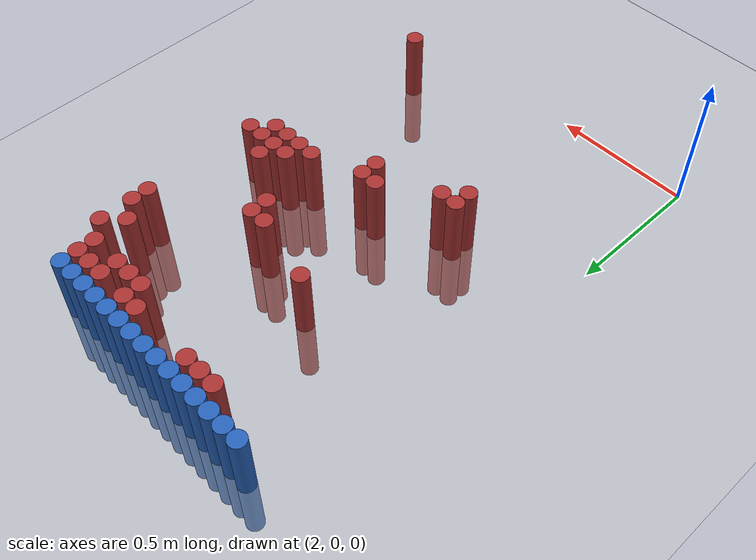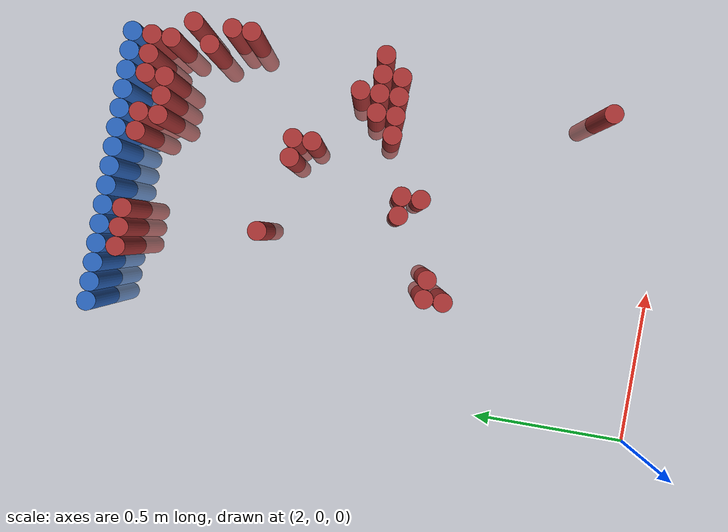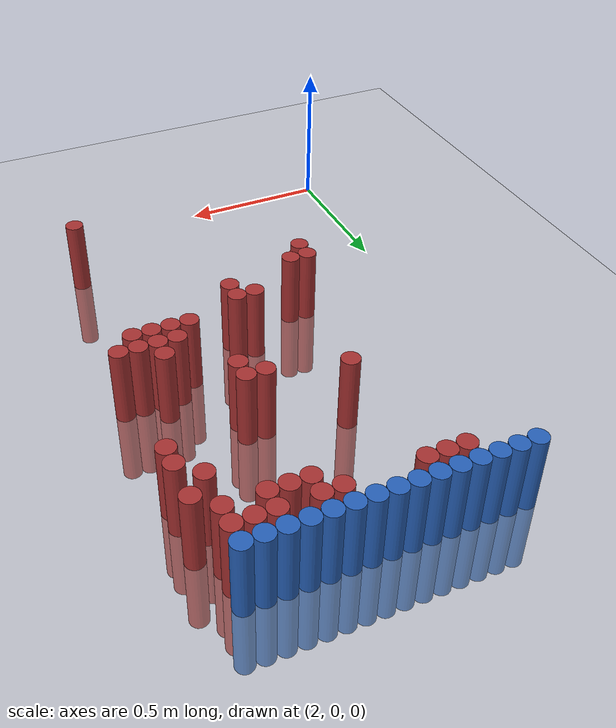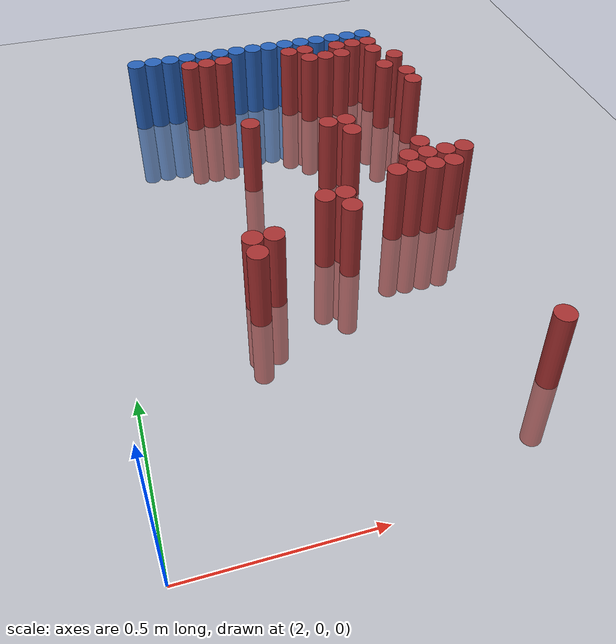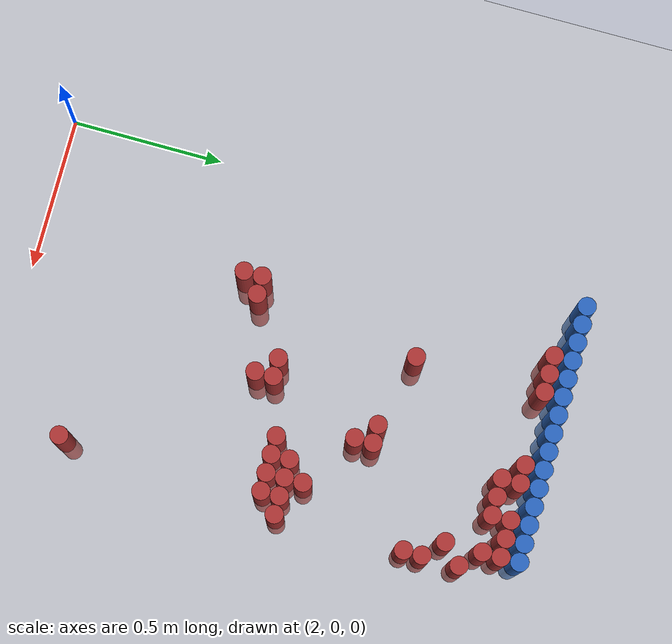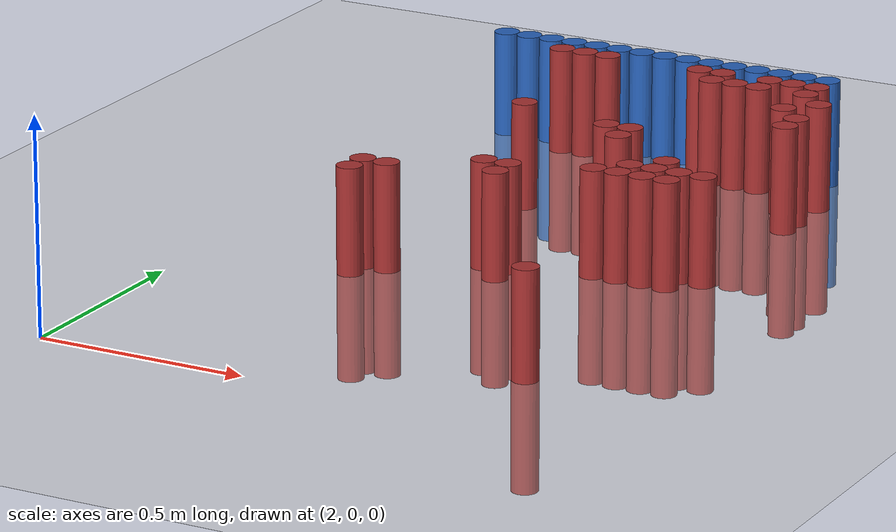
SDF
<sdf version="1.6">
 <world name="default">
  <model name="ground_plane">
   <static>1</static>
   <link name="link">
    <collision name="collision">
     <geometry><plane><normal>0 0 1</normal><size>100 100</size></plane></geometry>
     <surface><friction><ode><mu>100</mu><mu2>50</mu2></ode></friction></surface>
    </collision>
    <visual name="visual">
     <cast_shadows>0</cast_shadows>
     <geometry><plane><normal>0 0 1</normal><size>100 100</size></plane></geometry>
     <material>
      <script><uri>file://media/materials/scripts/gazebo.material</uri><name>Gazebo/Grey</name></script>
     </material>
    </visual>
   </link>
  </model>
  <model name="unit_cylinder_97">
   <static>1</static>
   <pose>2.190000 1.770000 0.000000 0.000000 0.000000 0.000000</pose>
   <link name="link">
    <inertial>
     <mass>1</mass>
     <inertia><ixx>0.145833</ixx><ixy>0</ixy><ixz>0</ixz><iyy>0.145833</iyy><iyz>0</iyz><izz>0.125</izz></inertia>
    </inertial>
    <collision name="collision">
     <geometry><cylinder><radius>0.030000</radius><length>0.5</length></cylinder></geometry>
    </collision>
    <visual name="visual">
     <geometry><cylinder><radius>0.030000</radius><length>0.5</length></cylinder></geometry>
     <material>
      <ambient>0.152000 0.379000 0.720000 1</ambient>
      <diffuse>0.152000 0.379000 0.720000 1</diffuse>
     </material>
     <material>
      <script><name>Gazebo/Grey</name><uri>file://media/materials/scripts/gazebo.material</uri></script>
     </material>
    </visual>
   </link>
  </model>
  <model name="unit_cylinder_98">
   <static>1</static>
   <pose>2.250000 1.770000 0.000000 0.000000 0.000000 0.000000</pose>
   <link name="link">
    <inertial>
     <mass>1</mass>
     <inertia><ixx>0.145833</ixx><ixy>0</ixy><ixz>0</ixz><iyy>0.145833</iyy><iyz>0</iyz><izz>0.125</izz></inertia>
    </inertial>
    <collision name="collision">
     <geometry><cylinder><radius>0.030000</radius><length>0.5</length></cylinder></geometry>
    </collision>
    <visual name="visual">
     <geometry><cylinder><radius>0.030000</radius><length>0.5</length></cylinder></geometry>
     <material>
      <ambient>0.152000 0.379000 0.720000 1</ambient>
      <diffuse>0.152000 0.379000 0.720000 1</diffuse>
     </material>
     <material>
      <script><name>Gazebo/Grey</name><uri>file://media/materials/scripts/gazebo.material</uri></script>
     </material>
    </visual>
   </link>
  </model>
  <model name="unit_cylinder_99">
   <static>1</static>
   <pose>2.310000 1.770000 0.000000 0.000000 0.000000 0.000000</pose>
   <link name="link">
    <inertial>
     <mass>1</mass>
     <inertia><ixx>0.145833</ixx><ixy>0</ixy><ixz>0</ixz><iyy>0.145833</iyy><iyz>0</iyz><izz>0.125</izz></inertia>
    </inertial>
    <collision name="collision">
     <geometry><cylinder><radius>0.030000</radius><length>0.5</length></cylinder></geometry>
    </collision>
    <visual name="visual">
     <geometry><cylinder><radius>0.030000</radius><length>0.5</length></cylinder></geometry>
     <material>
      <ambient>0.152000 0.379000 0.720000 1</ambient>
      <diffuse>0.152000 0.379000 0.720000 1</diffuse>
     </material>
     <material>
      <script><name>Gazebo/Grey</name><uri>file://media/materials/scripts/gazebo.material</uri></script>
     </material>
    </visual>
   </link>
  </model>
  <model name="unit_cylinder_100">
   <static>1</static>
   <pose>2.370000 1.770000 0.000000 0.000000 0.000000 0.000000</pose>
   <link name="link">
    <inertial>
     <mass>1</mass>
     <inertia><ixx>0.145833</ixx><ixy>0</ixy><ixz>0</ixz><iyy>0.145833</iyy><iyz>0</iyz><izz>0.125</izz></inertia>
    </inertial>
    <collision name="collision">
     <geometry><cylinder><radius>0.030000</radius><length>0.5</length></cylinder></geometry>
    </collision>
    <visual name="visual">
     <geometry><cylinder><radius>0.030000</radius><length>0.5</length></cylinder></geometry>
     <material>
      <ambient>0.152000 0.379000 0.720000 1</ambient>
      <diffuse>0.152000 0.379000 0.720000 1</diffuse>
     </material>
     <material>
      <script><name>Gazebo/Grey</name><uri>file://media/materials/scripts/gazebo.material</uri></script>
     </material>
    </visual>
   </link>
  </model>
  <model name="unit_cylinder_101">
   <static>1</static>
   <pose>2.430000 1.770000 0.000000 0.000000 0.000000 0.000000</pose>
   <link name="link">
    <inertial>
     <mass>1</mass>
     <inertia><ixx>0.145833</ixx><ixy>0</ixy><ixz>0</ixz><iyy>0.145833</iyy><iyz>0</iyz><izz>0.125</izz></inertia>
    </inertial>
    <collision name="collision">
     <geometry><cylinder><radius>0.030000</radius><length>0.5</length></cylinder></geometry>
    </collision>
    <visual name="visual">
     <geometry><cylinder><radius>0.030000</radius><length>0.5</length></cylinder></geometry>
     <material>
      <ambient>0.152000 0.379000 0.720000 1</ambient>
      <diffuse>0.152000 0.379000 0.720000 1</diffuse>
     </material>
     <material>
      <script><name>Gazebo/Grey</name><uri>file://media/materials/scripts/gazebo.material</uri></script>
     </material>
    </visual>
   </link>
  </model>
  <model name="unit_cylinder_102">
   <static>1</static>
   <pose>2.490000 1.770000 0.000000 0.000000 0.000000 0.000000</pose>
   <link name="link">
    <inertial>
     <mass>1</mass>
     <inertia><ixx>0.145833</ixx><ixy>0</ixy><ixz>0</ixz><iyy>0.145833</iyy><iyz>0</iyz><izz>0.125</izz></inertia>
    </inertial>
    <collision name="collision">
     <geometry><cylinder><radius>0.030000</radius><length>0.5</length></cylinder></geometry>
    </collision>
    <visual name="visual">
     <geometry><cylinder><radius>0.030000</radius><length>0.5</length></cylinder></geometry>
     <material>
      <ambient>0.152000 0.379000 0.720000 1</ambient>
      <diffuse>0.152000 0.379000 0.720000 1</diffuse>
     </material>
     <material>
      <script><name>Gazebo/Grey</name><uri>file://media/materials/scripts/gazebo.material</uri></script>
     </material>
    </visual>
   </link>
  </model>
  <model name="unit_cylinder_103">
   <static>1</static>
   <pose>2.550000 1.770000 0.000000 0.000000 0.000000 0.000000</pose>
   <link name="link">
    <inertial>
     <mass>1</mass>
     <inertia><ixx>0.145833</ixx><ixy>0</ixy><ixz>0</ixz><iyy>0.145833</iyy><iyz>0</iyz><izz>0.125</izz></inertia>
    </inertial>
    <collision name="collision">
     <geometry><cylinder><radius>0.030000</radius><length>0.5</length></cylinder></geometry>
    </collision>
    <visual name="visual">
     <geometry><cylinder><radius>0.030000</radius><length>0.5</length></cylinder></geometry>
     <material>
      <ambient>0.152000 0.379000 0.720000 1</ambient>
      <diffuse>0.152000 0.379000 0.720000 1</diffuse>
     </material>
     <material>
      <script><name>Gazebo/Grey</name><uri>file://media/materials/scripts/gazebo.material</uri></script>
     </material>
    </visual>
   </link>
  </model>
  <model name="unit_cylinder_104">
   <static>1</static>
   <pose>2.610000 1.770000 0.000000 0.000000 0.000000 0.000000</pose>
   <link name="link">
    <inertial>
     <mass>1</mass>
     <inertia><ixx>0.145833</ixx><ixy>0</ixy><ixz>0</ixz><iyy>0.145833</iyy><iyz>0</iyz><izz>0.125</izz></inertia>
    </inertial>
    <collision name="collision">
     <geometry><cylinder><radius>0.030000</radius><length>0.5</length></cylinder></geometry>
    </collision>
    <visual name="visual">
     <geometry><cylinder><radius>0.030000</radius><length>0.5</length></cylinder></geometry>
     <material>
      <ambient>0.152000 0.379000 0.720000 1</ambient>
      <diffuse>0.152000 0.379000 0.720000 1</diffuse>
     </material>
     <material>
      <script><name>Gazebo/Grey</name><uri>file://media/materials/scripts/gazebo.material</uri></script>
     </material>
    </visual>
   </link>
  </model>
  <model name="unit_cylinder_105">
   <static>1</static>
   <pose>2.670000 1.770000 0.000000 0.000000 0.000000 0.000000</pose>
   <link name="link">
    <inertial>
     <mass>1</mass>
     <inertia><ixx>0.145833</ixx><ixy>0</ixy><ixz>0</ixz><iyy>0.145833</iyy><iyz>0</iyz><izz>0.125</izz></inertia>
    </inertial>
    <collision name="collision">
     <geometry><cylinder><radius>0.030000</radius><length>0.5</length></cylinder></geometry>
    </collision>
    <visual name="visual">
     <geometry><cylinder><radius>0.030000</radius><length>0.5</length></cylinder></geometry>
     <material>
      <ambient>0.152000 0.379000 0.720000 1</ambient>
      <diffuse>0.152000 0.379000 0.720000 1</diffuse>
     </material>
     <material>
      <script><name>Gazebo/Grey</name><uri>file://media/materials/scripts/gazebo.material</uri></script>
     </material>
    </visual>
   </link>
  </model>
  <model name="unit_cylinder_106">
   <static>1</static>
   <pose>2.730000 1.770000 0.000000 0.000000 0.000000 0.000000</pose>
   <link name="link">
    <inertial>
     <mass>1</mass>
     <inertia><ixx>0.145833</ixx><ixy>0</ixy><ixz>0</ixz><iyy>0.145833</iyy><iyz>0</iyz><izz>0.125</izz></inertia>
    </inertial>
    <collision name="collision">
     <geometry><cylinder><radius>0.030000</radius><length>0.5</length></cylinder></geometry>
    </collision>
    <visual name="visual">
     <geometry><cylinder><radius>0.030000</radius><length>0.5</length></cylinder></geometry>
     <material>
      <ambient>0.152000 0.379000 0.720000 1</ambient>
      <diffuse>0.152000 0.379000 0.720000 1</diffuse>
     </material>
     <material>
      <script><name>Gazebo/Grey</name><uri>file://media/materials/scripts/gazebo.material</uri></script>
     </material>
    </visual>
   </link>
  </model>
  <model name="unit_cylinder_107">
   <static>1</static>
   <pose>2.790000 1.770000 0.000000 0.000000 0.000000 0.000000</pose>
   <link name="link">
    <inertial>
     <mass>1</mass>
     <inertia><ixx>0.145833</ixx><ixy>0</ixy><ixz>0</ixz><iyy>0.145833</iyy><iyz>0</iyz><izz>0.125</izz></inertia>
    </inertial>
    <collision name="collision">
     <geometry><cylinder><radius>0.030000</radius><length>0.5</length></cylinder></geometry>
    </collision>
    <visual name="visual">
     <geometry><cylinder><radius>0.030000</radius><length>0.5</length></cylinder></geometry>
     <material>
      <ambient>0.152000 0.379000 0.720000 1</ambient>
      <diffuse>0.152000 0.379000 0.720000 1</diffuse>
     </material>
     <material>
      <script><name>Gazebo/Grey</name><uri>file://media/materials/scripts/gazebo.material</uri></script>
     </material>
    </visual>
   </link>
  </model>
  <model name="unit_cylinder_108">
   <static>1</static>
   <pose>2.850000 1.770000 0.000000 0.000000 0.000000 0.000000</pose>
   <link name="link">
    <inertial>
     <mass>1</mass>
     <inertia><ixx>0.145833</ixx><ixy>0</ixy><ixz>0</ixz><iyy>0.145833</iyy><iyz>0</iyz><izz>0.125</izz></inertia>
    </inertial>
    <collision name="collision">
     <geometry><cylinder><radius>0.030000</radius><length>0.5</length></cylinder></geometry>
    </collision>
    <visual name="visual">
     <geometry><cylinder><radius>0.030000</radius><length>0.5</length></cylinder></geometry>
     <material>
      <ambient>0.152000 0.379000 0.720000 1</ambient>
      <diffuse>0.152000 0.379000 0.720000 1</diffuse>
     </material>
     <material>
      <script><name>Gazebo/Grey</name><uri>file://media/materials/scripts/gazebo.material</uri></script>
     </material>
    </visual>
   </link>
  </model>
  <model name="unit_cylinder_109">
   <static>1</static>
   <pose>2.910000 1.770000 0.000000 0.000000 0.000000 0.000000</pose>
   <link name="link">
    <inertial>
     <mass>1</mass>
     <inertia><ixx>0.145833</ixx><ixy>0</ixy><ixz>0</ixz><iyy>0.145833</iyy><iyz>0</iyz><izz>0.125</izz></inertia>
    </inertial>
    <collision name="collision">
     <geometry><cylinder><radius>0.030000</radius><length>0.5</length></cylinder></geometry>
    </collision>
    <visual name="visual">
     <geometry><cylinder><radius>0.030000</radius><length>0.5</length></cylinder></geometry>
     <material>
      <ambient>0.152000 0.379000 0.720000 1</ambient>
      <diffuse>0.152000 0.379000 0.720000 1</diffuse>
     </material>
     <material>
      <script><name>Gazebo/Grey</name><uri>file://media/materials/scripts/gazebo.material</uri></script>
     </material>
    </visual>
   </link>
  </model>
  <model name="unit_cylinder_110">
   <static>1</static>
   <pose>2.970000 1.770000 0.000000 0.000000 0.000000 0.000000</pose>
   <link name="link">
    <inertial>
     <mass>1</mass>
     <inertia><ixx>0.145833</ixx><ixy>0</ixy><ixz>0</ixz><iyy>0.145833</iyy><iyz>0</iyz><izz>0.125</izz></inertia>
    </inertial>
    <collision name="collision">
     <geometry><cylinder><radius>0.030000</radius><length>0.5</length></cylinder></geometry>
    </collision>
    <visual name="visual">
     <geometry><cylinder><radius>0.030000</radius><length>0.5</length></cylinder></geometry>
     <material>
      <ambient>0.152000 0.379000 0.720000 1</ambient>
      <diffuse>0.152000 0.379000 0.720000 1</diffuse>
     </material>
     <material>
      <script><name>Gazebo/Grey</name><uri>file://media/materials/scripts/gazebo.material</uri></script>
     </material>
    </visual>
   </link>
  </model>
  <model name="unit_cylinder_111">
   <static>1</static>
   <pose>3.030000 1.770000 0.000000 0.000000 0.000000 0.000000</pose>
   <link name="link">
    <inertial>
     <mass>1</mass>
     <inertia><ixx>0.145833</ixx><ixy>0</ixy><ixz>0</ixz><iyy>0.145833</iyy><iyz>0</iyz><izz>0.125</izz></inertia>
    </inertial>
    <collision name="collision">
     <geometry><cylinder><radius>0.030000</radius><length>0.5</length></cylinder></geometry>
    </collision>
    <visual name="visual">
     <geometry><cylinder><radius>0.030000</radius><length>0.5</length></cylinder></geometry>
     <material>
      <ambient>0.152000 0.379000 0.720000 1</ambient>
      <diffuse>0.152000 0.379000 0.720000 1</diffuse>
     </material>
     <material>
      <script><name>Gazebo/Grey</name><uri>file://media/materials/scripts/gazebo.material</uri></script>
     </material>
    </visual>
   </link>
  </model>
  <model name="unit_cylinder_125">
   <static>1</static>
   <pose>2.370000 1.710000 0.000000 0.000000 0.000000 0.000000</pose>
   <link name="link">
    <inertial>
     <mass>1</mass>
     <inertia><ixx>0.145833</ixx><ixy>0</ixy><ixz>0</ixz><iyy>0.145833</iyy><iyz>0</iyz><izz>0.125</izz></inertia>
    </inertial>
    <collision name="collision">
     <geometry><cylinder><radius>0.030000</radius><length>0.5</length></cylinder></geometry>
    </collision>
    <visual name="visual">
     <geometry><cylinder><radius>0.030000</radius><length>0.5</length></cylinder></geometry>
     <material>
      <ambient>0.648000 0.192000 0.192000 1</ambient>
      <diffuse>0.648000 0.192000 0.192000 1</diffuse>
     </material>
     <material>
      <script><name>Gazebo/Grey</name><uri>file://media/materials/scripts/gazebo.material</uri></script>
     </material>
    </visual>
   </link>
  </model>
  <model name="unit_cylinder_126">
   <static>1</static>
   <pose>2.430000 1.710000 0.000000 0.000000 0.000000 0.000000</pose>
   <link name="link">
    <inertial>
     <mass>1</mass>
     <inertia><ixx>0.145833</ixx><ixy>0</ixy><ixz>0</ixz><iyy>0.145833</iyy><iyz>0</iyz><izz>0.125</izz></inertia>
    </inertial>
    <collision name="collision">
     <geometry><cylinder><radius>0.030000</radius><length>0.5</length></cylinder></geometry>
    </collision>
    <visual name="visual">
     <geometry><cylinder><radius>0.030000</radius><length>0.5</length></cylinder></geometry>
     <material>
      <ambient>0.648000 0.192000 0.192000 1</ambient>
      <diffuse>0.648000 0.192000 0.192000 1</diffuse>
     </material>
     <material>
      <script><name>Gazebo/Grey</name><uri>file://media/materials/scripts/gazebo.material</uri></script>
     </material>
    </visual>
   </link>
  </model>
  <model name="unit_cylinder_127">
   <static>1</static>
   <pose>2.490000 1.710000 0.000000 0.000000 0.000000 0.000000</pose>
   <link name="link">
    <inertial>
     <mass>1</mass>
     <inertia><ixx>0.145833</ixx><ixy>0</ixy><ixz>0</ixz><iyy>0.145833</iyy><iyz>0</iyz><izz>0.125</izz></inertia>
    </inertial>
    <collision name="collision">
     <geometry><cylinder><radius>0.030000</radius><length>0.5</length></cylinder></geometry>
    </collision>
    <visual name="visual">
     <geometry><cylinder><radius>0.030000</radius><length>0.5</length></cylinder></geometry>
     <material>
      <ambient>0.648000 0.192000 0.192000 1</ambient>
      <diffuse>0.648000 0.192000 0.192000 1</diffuse>
     </material>
     <material>
      <script><name>Gazebo/Grey</name><uri>file://media/materials/scripts/gazebo.material</uri></script>
     </material>
    </visual>
   </link>
  </model>
  <model name="unit_cylinder_128">
   <static>1</static>
   <pose>2.730000 1.710000 0.000000 0.000000 0.000000 0.000000</pose>
   <link name="link">
    <inertial>
     <mass>1</mass>
     <inertia><ixx>0.145833</ixx><ixy>0</ixy><ixz>0</ixz><iyy>0.145833</iyy><iyz>0</iyz><izz>0.125</izz></inertia>
    </inertial>
    <collision name="collision">
     <geometry><cylinder><radius>0.030000</radius><length>0.5</length></cylinder></geometry>
    </collision>
    <visual name="visual">
     <geometry><cylinder><radius>0.030000</radius><length>0.5</length></cylinder></geometry>
     <material>
      <ambient>0.648000 0.192000 0.192000 1</ambient>
      <diffuse>0.648000 0.192000 0.192000 1</diffuse>
     </material>
     <material>
      <script><name>Gazebo/Grey</name><uri>file://media/materials/scripts/gazebo.material</uri></script>
     </material>
    </visual>
   </link>
  </model>
  <model name="unit_cylinder_129">
   <static>1</static>
   <pose>2.790000 1.710000 0.000000 0.000000 0.000000 0.000000</pose>
   <link name="link">
    <inertial>
     <mass>1</mass>
     <inertia><ixx>0.145833</ixx><ixy>0</ixy><ixz>0</ixz><iyy>0.145833</iyy><iyz>0</iyz><izz>0.125</izz></inertia>
    </inertial>
    <collision name="collision">
     <geometry><cylinder><radius>0.030000</radius><length>0.5</length></cylinder></geometry>
    </collision>
    <visual name="visual">
     <geometry><cylinder><radius>0.030000</radius><length>0.5</length></cylinder></geometry>
     <material>
      <ambient>0.648000 0.192000 0.192000 1</ambient>
      <diffuse>0.648000 0.192000 0.192000 1</diffuse>
     </material>
     <material>
      <script><name>Gazebo/Grey</name><uri>file://media/materials/scripts/gazebo.material</uri></script>
     </material>
    </visual>
   </link>
  </model>
  <model name="unit_cylinder_130">
   <static>1</static>
   <pose>2.910000 1.710000 0.000000 0.000000 0.000000 0.000000</pose>
   <link name="link">
    <inertial>
     <mass>1</mass>
     <inertia><ixx>0.145833</ixx><ixy>0</ixy><ixz>0</ixz><iyy>0.145833</iyy><iyz>0</iyz><izz>0.125</izz></inertia>
    </inertial>
    <collision name="collision">
     <geometry><cylinder><radius>0.030000</radius><length>0.5</length></cylinder></geometry>
    </collision>
    <visual name="visual">
     <geometry><cylinder><radius>0.030000</radius><length>0.5</length></cylinder></geometry>
     <material>
      <ambient>0.648000 0.192000 0.192000 1</ambient>
      <diffuse>0.648000 0.192000 0.192000 1</diffuse>
     </material>
     <material>
      <script><name>Gazebo/Grey</name><uri>file://media/materials/scripts/gazebo.material</uri></script>
     </material>
    </visual>
   </link>
  </model>
  <model name="unit_cylinder_131">
   <static>1</static>
   <pose>2.970000 1.710000 0.000000 0.000000 0.000000 0.000000</pose>
   <link name="link">
    <inertial>
     <mass>1</mass>
     <inertia><ixx>0.145833</ixx><ixy>0</ixy><ixz>0</ixz><iyy>0.145833</iyy><iyz>0</iyz><izz>0.125</izz></inertia>
    </inertial>
    <collision name="collision">
     <geometry><cylinder><radius>0.030000</radius><length>0.5</length></cylinder></geometry>
    </collision>
    <visual name="visual">
     <geometry><cylinder><radius>0.030000</radius><length>0.5</length></cylinder></geometry>
     <material>
      <ambient>0.648000 0.192000 0.192000 1</ambient>
      <diffuse>0.648000 0.192000 0.192000 1</diffuse>
     </material>
     <material>
      <script><name>Gazebo/Grey</name><uri>file://media/materials/scripts/gazebo.material</uri></script>
     </material>
    </visual>
   </link>
  </model>
  <model name="unit_cylinder_132">
   <static>1</static>
   <pose>3.030000 1.710000 0.000000 0.000000 0.000000 0.000000</pose>
   <link name="link">
    <inertial>
     <mass>1</mass>
     <inertia><ixx>0.145833</ixx><ixy>0</ixy><ixz>0</ixz><iyy>0.145833</iyy><iyz>0</iyz><izz>0.125</izz></inertia>
    </inertial>
    <collision name="collision">
     <geometry><cylinder><radius>0.030000</radius><length>0.5</length></cylinder></geometry>
    </collision>
    <visual name="visual">
     <geometry><cylinder><radius>0.030000</radius><length>0.5</length></cylinder></geometry>
     <material>
      <ambient>0.648000 0.192000 0.192000 1</ambient>
      <diffuse>0.648000 0.192000 0.192000 1</diffuse>
     </material>
     <material>
      <script><name>Gazebo/Grey</name><uri>file://media/materials/scripts/gazebo.material</uri></script>
     </material>
    </visual>
   </link>
  </model>
  <model name="unit_cylinder_142">
   <static>1</static>
   <pose>2.790000 1.650000 0.000000 0.000000 0.000000 0.000000</pose>
   <link name="link">
    <inertial>
     <mass>1</mass>
     <inertia><ixx>0.145833</ixx><ixy>0</ixy><ixz>0</ixz><iyy>0.145833</iyy><iyz>0</iyz><izz>0.125</izz></inertia>
    </inertial>
    <collision name="collision">
     <geometry><cylinder><radius>0.030000</radius><length>0.5</length></cylinder></geometry>
    </collision>
    <visual name="visual">
     <geometry><cylinder><radius>0.030000</radius><length>0.5</length></cylinder></geometry>
     <material>
      <ambient>0.648000 0.192000 0.192000 1</ambient>
      <diffuse>0.648000 0.192000 0.192000 1</diffuse>
     </material>
     <material>
      <script><name>Gazebo/Grey</name><uri>file://media/materials/scripts/gazebo.material</uri></script>
     </material>
    </visual>
   </link>
  </model>
  <model name="unit_cylinder_143">
   <static>1</static>
   <pose>2.850000 1.650000 0.000000 0.000000 0.000000 0.000000</pose>
   <link name="link">
    <inertial>
     <mass>1</mass>
     <inertia><ixx>0.145833</ixx><ixy>0</ixy><ixz>0</ixz><iyy>0.145833</iyy><iyz>0</iyz><izz>0.125</izz></inertia>
    </inertial>
    <collision name="collision">
     <geometry><cylinder><radius>0.030000</radius><length>0.5</length></cylinder></geometry>
    </collision>
    <visual name="visual">
     <geometry><cylinder><radius>0.030000</radius><length>0.5</length></cylinder></geometry>
     <material>
      <ambient>0.648000 0.192000 0.192000 1</ambient>
      <diffuse>0.648000 0.192000 0.192000 1</diffuse>
     </material>
     <material>
      <script><name>Gazebo/Grey</name><uri>file://media/materials/scripts/gazebo.material</uri></script>
     </material>
    </visual>
   </link>
  </model>
  <model name="unit_cylinder_144">
   <static>1</static>
   <pose>2.910000 1.650000 0.000000 0.000000 0.000000 0.000000</pose>
   <link name="link">
    <inertial>
     <mass>1</mass>
     <inertia><ixx>0.145833</ixx><ixy>0</ixy><ixz>0</ixz><iyy>0.145833</iyy><iyz>0</iyz><izz>0.125</izz></inertia>
    </inertial>
    <collision name="collision">
     <geometry><cylinder><radius>0.030000</radius><length>0.5</length></cylinder></geometry>
    </collision>
    <visual name="visual">
     <geometry><cylinder><radius>0.030000</radius><length>0.5</length></cylinder></geometry>
     <material>
      <ambient>0.648000 0.192000 0.192000 1</ambient>
      <diffuse>0.648000 0.192000 0.192000 1</diffuse>
     </material>
     <material>
      <script><name>Gazebo/Grey</name><uri>file://media/materials/scripts/gazebo.material</uri></script>
     </material>
    </visual>
   </link>
  </model>
  <model name="unit_cylinder_145">
   <static>1</static>
   <pose>3.030000 1.650000 0.000000 0.000000 0.000000 0.000000</pose>
   <link name="link">
    <inertial>
     <mass>1</mass>
     <inertia><ixx>0.145833</ixx><ixy>0</ixy><ixz>0</ixz><iyy>0.145833</iyy><iyz>0</iyz><izz>0.125</izz></inertia>
    </inertial>
    <collision name="collision">
     <geometry><cylinder><radius>0.030000</radius><length>0.5</length></cylinder></geometry>
    </collision>
    <visual name="visual">
     <geometry><cylinder><radius>0.030000</radius><length>0.5</length></cylinder></geometry>
     <material>
      <ambient>0.648000 0.192000 0.192000 1</ambient>
      <diffuse>0.648000 0.192000 0.192000 1</diffuse>
     </material>
     <material>
      <script><name>Gazebo/Grey</name><uri>file://media/materials/scripts/gazebo.material</uri></script>
     </material>
    </visual>
   </link>
  </model>
  <model name="unit_cylinder_148">
   <static>1</static>
   <pose>3.090000 1.590000 0.000000 0.000000 0.000000 0.000000</pose>
   <link name="link">
    <inertial>
     <mass>1</mass>
     <inertia><ixx>0.145833</ixx><ixy>0</ixy><ixz>0</ixz><iyy>0.145833</iyy><iyz>0</iyz><izz>0.125</izz></inertia>
    </inertial>
    <collision name="collision">
     <geometry><cylinder><radius>0.030000</radius><length>0.5</length></cylinder></geometry>
    </collision>
    <visual name="visual">
     <geometry><cylinder><radius>0.030000</radius><length>0.5</length></cylinder></geometry>
     <material>
      <ambient>0.648000 0.192000 0.192000 1</ambient>
      <diffuse>0.648000 0.192000 0.192000 1</diffuse>
     </material>
     <material>
      <script><name>Gazebo/Grey</name><uri>file://media/materials/scripts/gazebo.material</uri></script>
     </material>
    </visual>
   </link>
  </model>
  <model name="unit_cylinder_149">
   <static>1</static>
   <pose>3.030000 1.530000 0.000000 0.000000 0.000000 0.000000</pose>
   <link name="link">
    <inertial>
     <mass>1</mass>
     <inertia><ixx>0.145833</ixx><ixy>0</ixy><ixz>0</ixz><iyy>0.145833</iyy><iyz>0</iyz><izz>0.125</izz></inertia>
    </inertial>
    <collision name="collision">
     <geometry><cylinder><radius>0.030000</radius><length>0.5</length></cylinder></geometry>
    </collision>
    <visual name="visual">
     <geometry><cylinder><radius>0.030000</radius><length>0.5</length></cylinder></geometry>
     <material>
      <ambient>0.648000 0.192000 0.192000 1</ambient>
      <diffuse>0.648000 0.192000 0.192000 1</diffuse>
     </material>
     <material>
      <script><name>Gazebo/Grey</name><uri>file://media/materials/scripts/gazebo.material</uri></script>
     </material>
    </visual>
   </link>
  </model>
  <model name="unit_cylinder_150">
   <static>1</static>
   <pose>3.090000 1.470000 0.000000 0.000000 0.000000 0.000000</pose>
   <link name="link">
    <inertial>
     <mass>1</mass>
     <inertia><ixx>0.145833</ixx><ixy>0</ixy><ixz>0</ixz><iyy>0.145833</iyy><iyz>0</iyz><izz>0.125</izz></inertia>
    </inertial>
    <collision name="collision">
     <geometry><cylinder><radius>0.030000</radius><length>0.5</length></cylinder></geometry>
    </collision>
    <visual name="visual">
     <geometry><cylinder><radius>0.030000</radius><length>0.5</length></cylinder></geometry>
     <material>
      <ambient>0.648000 0.192000 0.192000 1</ambient>
      <diffuse>0.648000 0.192000 0.192000 1</diffuse>
     </material>
     <material>
      <script><name>Gazebo/Grey</name><uri>file://media/materials/scripts/gazebo.material</uri></script>
     </material>
    </visual>
   </link>
  </model>
  <model name="unit_cylinder_153">
   <static>1</static>
   <pose>3.090000 1.410000 0.000000 0.000000 0.000000 0.000000</pose>
   <link name="link">
    <inertial>
     <mass>1</mass>
     <inertia><ixx>0.145833</ixx><ixy>0</ixy><ixz>0</ixz><iyy>0.145833</iyy><iyz>0</iyz><izz>0.125</izz></inertia>
    </inertial>
    <collision name="collision">
     <geometry><cylinder><radius>0.030000</radius><length>0.5</length></cylinder></geometry>
    </collision>
    <visual name="visual">
     <geometry><cylinder><radius>0.030000</radius><length>0.5</length></cylinder></geometry>
     <material>
      <ambient>0.648000 0.192000 0.192000 1</ambient>
      <diffuse>0.648000 0.192000 0.192000 1</diffuse>
     </material>
     <material>
      <script><name>Gazebo/Grey</name><uri>file://media/materials/scripts/gazebo.material</uri></script>
     </material>
    </visual>
   </link>
  </model>
  <model name="unit_cylinder_163">
   <static>1</static>
   <pose>2.490000 1.290000 0.000000 0.000000 0.000000 0.000000</pose>
   <link name="link">
    <inertial>
     <mass>1</mass>
     <inertia><ixx>0.145833</ixx><ixy>0</ixy><ixz>0</ixz><iyy>0.145833</iyy><iyz>0</iyz><izz>0.125</izz></inertia>
    </inertial>
    <collision name="collision">
     <geometry><cylinder><radius>0.030000</radius><length>0.5</length></cylinder></geometry>
    </collision>
    <visual name="visual">
     <geometry><cylinder><radius>0.030000</radius><length>0.5</length></cylinder></geometry>
     <material>
      <ambient>0.648000 0.192000 0.192000 1</ambient>
      <diffuse>0.648000 0.192000 0.192000 1</diffuse>
     </material>
     <material>
      <script><name>Gazebo/Grey</name><uri>file://media/materials/scripts/gazebo.material</uri></script>
     </material>
    </visual>
   </link>
  </model>
  <model name="unit_cylinder_169">
   <static>1</static>
   <pose>2.730000 1.230000 0.000000 0.000000 0.000000 0.000000</pose>
   <link name="link">
    <inertial>
     <mass>1</mass>
     <inertia><ixx>0.145833</ixx><ixy>0</ixy><ixz>0</ixz><iyy>0.145833</iyy><iyz>0</iyz><izz>0.125</izz></inertia>
    </inertial>
    <collision name="collision">
     <geometry><cylinder><radius>0.030000</radius><length>0.5</length></cylinder></geometry>
    </collision>
    <visual name="visual">
     <geometry><cylinder><radius>0.030000</radius><length>0.5</length></cylinder></geometry>
     <material>
      <ambient>0.648000 0.192000 0.192000 1</ambient>
      <diffuse>0.648000 0.192000 0.192000 1</diffuse>
     </material>
     <material>
      <script><name>Gazebo/Grey</name><uri>file://media/materials/scripts/gazebo.material</uri></script>
     </material>
    </visual>
   </link>
  </model>
  <model name="unit_cylinder_170">
   <static>1</static>
   <pose>2.790000 1.230000 0.000000 0.000000 0.000000 0.000000</pose>
   <link name="link">
    <inertial>
     <mass>1</mass>
     <inertia><ixx>0.145833</ixx><ixy>0</ixy><ixz>0</ixz><iyy>0.145833</iyy><iyz>0</iyz><izz>0.125</izz></inertia>
    </inertial>
    <collision name="collision">
     <geometry><cylinder><radius>0.030000</radius><length>0.5</length></cylinder></geometry>
    </collision>
    <visual name="visual">
     <geometry><cylinder><radius>0.030000</radius><length>0.5</length></cylinder></geometry>
     <material>
      <ambient>0.648000 0.192000 0.192000 1</ambient>
      <diffuse>0.648000 0.192000 0.192000 1</diffuse>
     </material>
     <material>
      <script><name>Gazebo/Grey</name><uri>file://media/materials/scripts/gazebo.material</uri></script>
     </material>
    </visual>
   </link>
  </model>
  <model name="unit_cylinder_173">
   <static>1</static>
   <pose>2.790000 1.170000 0.000000 0.000000 0.000000 0.000000</pose>
   <link name="link">
    <inertial>
     <mass>1</mass>
     <inertia><ixx>0.145833</ixx><ixy>0</ixy><ixz>0</ixz><iyy>0.145833</iyy><iyz>0</iyz><izz>0.125</izz></inertia>
    </inertial>
    <collision name="collision">
     <geometry><cylinder><radius>0.030000</radius><length>0.5</length></cylinder></geometry>
    </collision>
    <visual name="visual">
     <geometry><cylinder><radius>0.030000</radius><length>0.5</length></cylinder></geometry>
     <material>
      <ambient>0.648000 0.192000 0.192000 1</ambient>
      <diffuse>0.648000 0.192000 0.192000 1</diffuse>
     </material>
     <material>
      <script><name>Gazebo/Grey</name><uri>file://media/materials/scripts/gazebo.material</uri></script>
     </material>
    </visual>
   </link>
  </model>
  <model name="unit_cylinder_174">
   <static>1</static>
   <pose>2.970000 1.050000 0.000000 0.000000 0.000000 0.000000</pose>
   <link name="link">
    <inertial>
     <mass>1</mass>
     <inertia><ixx>0.145833</ixx><ixy>0</ixy><ixz>0</ixz><iyy>0.145833</iyy><iyz>0</iyz><izz>0.125</izz></inertia>
    </inertial>
    <collision name="collision">
     <geometry><cylinder><radius>0.030000</radius><length>0.5</length></cylinder></geometry>
    </collision>
    <visual name="visual">
     <geometry><cylinder><radius>0.030000</radius><length>0.5</length></cylinder></geometry>
     <material>
      <ambient>0.648000 0.192000 0.192000 1</ambient>
      <diffuse>0.648000 0.192000 0.192000 1</diffuse>
     </material>
     <material>
      <script><name>Gazebo/Grey</name><uri>file://media/materials/scripts/gazebo.material</uri></script>
     </material>
    </visual>
   </link>
  </model>
  <model name="unit_cylinder_175">
   <static>1</static>
   <pose>2.910000 0.990000 0.000000 0.000000 0.000000 0.000000</pose>
   <link name="link">
    <inertial>
     <mass>1</mass>
     <inertia><ixx>0.145833</ixx><ixy>0</ixy><ixz>0</ixz><iyy>0.145833</iyy><iyz>0</iyz><izz>0.125</izz></inertia>
    </inertial>
    <collision name="collision">
     <geometry><cylinder><radius>0.030000</radius><length>0.5</length></cylinder></geometry>
    </collision>
    <visual name="visual">
     <geometry><cylinder><radius>0.030000</radius><length>0.5</length></cylinder></geometry>
     <material>
      <ambient>0.648000 0.192000 0.192000 1</ambient>
      <diffuse>0.648000 0.192000 0.192000 1</diffuse>
     </material>
     <material>
      <script><name>Gazebo/Grey</name><uri>file://media/materials/scripts/gazebo.material</uri></script>
     </material>
    </visual>
   </link>
  </model>
  <model name="unit_cylinder_176">
   <static>1</static>
   <pose>2.970000 0.990000 0.000000 0.000000 0.000000 0.000000</pose>
   <link name="link">
    <inertial>
     <mass>1</mass>
     <inertia><ixx>0.145833</ixx><ixy>0</ixy><ixz>0</ixz><iyy>0.145833</iyy><iyz>0</iyz><izz>0.125</izz></inertia>
    </inertial>
    <collision name="collision">
     <geometry><cylinder><radius>0.030000</radius><length>0.5</length></cylinder></geometry>
    </collision>
    <visual name="visual">
     <geometry><cylinder><radius>0.030000</radius><length>0.5</length></cylinder></geometry>
     <material>
      <ambient>0.648000 0.192000 0.192000 1</ambient>
      <diffuse>0.648000 0.192000 0.192000 1</diffuse>
     </material>
     <material>
      <script><name>Gazebo/Grey</name><uri>file://media/materials/scripts/gazebo.material</uri></script>
     </material>
    </visual>
   </link>
  </model>
  <model name="unit_cylinder_177">
   <static>1</static>
   <pose>3.030000 0.990000 0.000000 0.000000 0.000000 0.000000</pose>
   <link name="link">
    <inertial>
     <mass>1</mass>
     <inertia><ixx>0.145833</ixx><ixy>0</ixy><ixz>0</ixz><iyy>0.145833</iyy><iyz>0</iyz><izz>0.125</izz></inertia>
    </inertial>
    <collision name="collision">
     <geometry><cylinder><radius>0.030000</radius><length>0.5</length></cylinder></geometry>
    </collision>
    <visual name="visual">
     <geometry><cylinder><radius>0.030000</radius><length>0.5</length></cylinder></geometry>
     <material>
      <ambient>0.648000 0.192000 0.192000 1</ambient>
      <diffuse>0.648000 0.192000 0.192000 1</diffuse>
     </material>
     <material>
      <script><name>Gazebo/Grey</name><uri>file://media/materials/scripts/gazebo.material</uri></script>
     </material>
    </visual>
   </link>
  </model>
  <model name="unit_cylinder_178">
   <static>1</static>
   <pose>3.090000 0.990000 0.000000 0.000000 0.000000 0.000000</pose>
   <link name="link">
    <inertial>
     <mass>1</mass>
     <inertia><ixx>0.145833</ixx><ixy>0</ixy><ixz>0</ixz><iyy>0.145833</iyy><iyz>0</iyz><izz>0.125</izz></inertia>
    </inertial>
    <collision name="collision">
     <geometry><cylinder><radius>0.030000</radius><length>0.5</length></cylinder></geometry>
    </collision>
    <visual name="visual">
     <geometry><cylinder><radius>0.030000</radius><length>0.5</length></cylinder></geometry>
     <material>
      <ambient>0.648000 0.192000 0.192000 1</ambient>
      <diffuse>0.648000 0.192000 0.192000 1</diffuse>
     </material>
     <material>
      <script><name>Gazebo/Grey</name><uri>file://media/materials/scripts/gazebo.material</uri></script>
     </material>
    </visual>
   </link>
  </model>
  <model name="unit_cylinder_179">
   <static>1</static>
   <pose>2.850000 0.930000 0.000000 0.000000 0.000000 0.000000</pose>
   <link name="link">
    <inertial>
     <mass>1</mass>
     <inertia><ixx>0.145833</ixx><ixy>0</ixy><ixz>0</ixz><iyy>0.145833</iyy><iyz>0</iyz><izz>0.125</izz></inertia>
    </inertial>
    <collision name="collision">
     <geometry><cylinder><radius>0.030000</radius><length>0.5</length></cylinder></geometry>
    </collision>
    <visual name="visual">
     <geometry><cylinder><radius>0.030000</radius><length>0.5</length></cylinder></geometry>
     <material>
      <ambient>0.648000 0.192000 0.192000 1</ambient>
      <diffuse>0.648000 0.192000 0.192000 1</diffuse>
     </material>
     <material>
      <script><name>Gazebo/Grey</name><uri>file://media/materials/scripts/gazebo.material</uri></script>
     </material>
    </visual>
   </link>
  </model>
  <model name="unit_cylinder_180">
   <static>1</static>
   <pose>2.910000 0.930000 0.000000 0.000000 0.000000 0.000000</pose>
   <link name="link">
    <inertial>
     <mass>1</mass>
     <inertia><ixx>0.145833</ixx><ixy>0</ixy><ixz>0</ixz><iyy>0.145833</iyy><iyz>0</iyz><izz>0.125</izz></inertia>
    </inertial>
    <collision name="collision">
     <geometry><cylinder><radius>0.030000</radius><length>0.5</length></cylinder></geometry>
    </collision>
    <visual name="visual">
     <geometry><cylinder><radius>0.030000</radius><length>0.5</length></cylinder></geometry>
     <material>
      <ambient>0.648000 0.192000 0.192000 1</ambient>
      <diffuse>0.648000 0.192000 0.192000 1</diffuse>
     </material>
     <material>
      <script><name>Gazebo/Grey</name><uri>file://media/materials/scripts/gazebo.material</uri></script>
     </material>
    </visual>
   </link>
  </model>
  <model name="unit_cylinder_181">
   <static>1</static>
   <pose>2.970000 0.930000 0.000000 0.000000 0.000000 0.000000</pose>
   <link name="link">
    <inertial>
     <mass>1</mass>
     <inertia><ixx>0.145833</ixx><ixy>0</ixy><ixz>0</ixz><iyy>0.145833</iyy><iyz>0</iyz><izz>0.125</izz></inertia>
    </inertial>
    <collision name="collision">
     <geometry><cylinder><radius>0.030000</radius><length>0.5</length></cylinder></geometry>
    </collision>
    <visual name="visual">
     <geometry><cylinder><radius>0.030000</radius><length>0.5</length></cylinder></geometry>
     <material>
      <ambient>0.648000 0.192000 0.192000 1</ambient>
      <diffuse>0.648000 0.192000 0.192000 1</diffuse>
     </material>
     <material>
      <script><name>Gazebo/Grey</name><uri>file://media/materials/scripts/gazebo.material</uri></script>
     </material>
    </visual>
   </link>
  </model>
  <model name="unit_cylinder_182">
   <static>1</static>
   <pose>3.030000 0.930000 0.000000 0.000000 0.000000 0.000000</pose>
   <link name="link">
    <inertial>
     <mass>1</mass>
     <inertia><ixx>0.145833</ixx><ixy>0</ixy><ixz>0</ixz><iyy>0.145833</iyy><iyz>0</iyz><izz>0.125</izz></inertia>
    </inertial>
    <collision name="collision">
     <geometry><cylinder><radius>0.030000</radius><length>0.5</length></cylinder></geometry>
    </collision>
    <visual name="visual">
     <geometry><cylinder><radius>0.030000</radius><length>0.5</length></cylinder></geometry>
     <material>
      <ambient>0.648000 0.192000 0.192000 1</ambient>
      <diffuse>0.648000 0.192000 0.192000 1</diffuse>
     </material>
     <material>
      <script><name>Gazebo/Grey</name><uri>file://media/materials/scripts/gazebo.material</uri></script>
     </material>
    </visual>
   </link>
  </model>
  <model name="unit_cylinder_183">
   <static>1</static>
   <pose>2.610000 0.870000 0.000000 0.000000 0.000000 0.000000</pose>
   <link name="link">
    <inertial>
     <mass>1</mass>
     <inertia><ixx>0.145833</ixx><ixy>0</ixy><ixz>0</ixz><iyy>0.145833</iyy><iyz>0</iyz><izz>0.125</izz></inertia>
    </inertial>
    <collision name="collision">
     <geometry><cylinder><radius>0.030000</radius><length>0.5</length></cylinder></geometry>
    </collision>
    <visual name="visual">
     <geometry><cylinder><radius>0.030000</radius><length>0.5</length></cylinder></geometry>
     <material>
      <ambient>0.648000 0.192000 0.192000 1</ambient>
      <diffuse>0.648000 0.192000 0.192000 1</diffuse>
     </material>
     <material>
      <script><name>Gazebo/Grey</name><uri>file://media/materials/scripts/gazebo.material</uri></script>
     </material>
    </visual>
   </link>
  </model>
  <model name="unit_cylinder_184">
   <static>1</static>
   <pose>2.670000 0.870000 0.000000 0.000000 0.000000 0.000000</pose>
   <link name="link">
    <inertial>
     <mass>1</mass>
     <inertia><ixx>0.145833</ixx><ixy>0</ixy><ixz>0</ixz><iyy>0.145833</iyy><iyz>0</iyz><izz>0.125</izz></inertia>
    </inertial>
    <collision name="collision">
     <geometry><cylinder><radius>0.030000</radius><length>0.5</length></cylinder></geometry>
    </collision>
    <visual name="visual">
     <geometry><cylinder><radius>0.030000</radius><length>0.5</length></cylinder></geometry>
     <material>
      <ambient>0.648000 0.192000 0.192000 1</ambient>
      <diffuse>0.648000 0.192000 0.192000 1</diffuse>
     </material>
     <material>
      <script><name>Gazebo/Grey</name><uri>file://media/materials/scripts/gazebo.material</uri></script>
     </material>
    </visual>
   </link>
  </model>
  <model name="unit_cylinder_185">
   <static>1</static>
   <pose>2.670000 0.810000 0.000000 0.000000 0.000000 0.000000</pose>
   <link name="link">
    <inertial>
     <mass>1</mass>
     <inertia><ixx>0.145833</ixx><ixy>0</ixy><ixz>0</ixz><iyy>0.145833</iyy><iyz>0</iyz><izz>0.125</izz></inertia>
    </inertial>
    <collision name="collision">
     <geometry><cylinder><radius>0.030000</radius><length>0.5</length></cylinder></geometry>
    </collision>
    <visual name="visual">
     <geometry><cylinder><radius>0.030000</radius><length>0.5</length></cylinder></geometry>
     <material>
      <ambient>0.648000 0.192000 0.192000 1</ambient>
      <diffuse>0.648000 0.192000 0.192000 1</diffuse>
     </material>
     <material>
      <script><name>Gazebo/Grey</name><uri>file://media/materials/scripts/gazebo.material</uri></script>
     </material>
    </visual>
   </link>
  </model>
  <model name="unit_cylinder_186">
   <static>1</static>
   <pose>2.370000 0.750000 0.000000 0.000000 0.000000 0.000000</pose>
   <link name="link">
    <inertial>
     <mass>1</mass>
     <inertia><ixx>0.145833</ixx><ixy>0</ixy><ixz>0</ixz><iyy>0.145833</iyy><iyz>0</iyz><izz>0.125</izz></inertia>
    </inertial>
    <collision name="collision">
     <geometry><cylinder><radius>0.030000</radius><length>0.5</length></cylinder></geometry>
    </collision>
    <visual name="visual">
     <geometry><cylinder><radius>0.030000</radius><length>0.5</length></cylinder></geometry>
     <material>
      <ambient>0.648000 0.192000 0.192000 1</ambient>
      <diffuse>0.648000 0.192000 0.192000 1</diffuse>
     </material>
     <material>
      <script><name>Gazebo/Grey</name><uri>file://media/materials/scripts/gazebo.material</uri></script>
     </material>
    </visual>
   </link>
  </model>
  <model name="unit_cylinder_187">
   <static>1</static>
   <pose>2.430000 0.750000 0.000000 0.000000 0.000000 0.000000</pose>
   <link name="link">
    <inertial>
     <mass>1</mass>
     <inertia><ixx>0.145833</ixx><ixy>0</ixy><ixz>0</ixz><iyy>0.145833</iyy><iyz>0</iyz><izz>0.125</izz></inertia>
    </inertial>
    <collision name="collision">
     <geometry><cylinder><radius>0.030000</radius><length>0.5</length></cylinder></geometry>
    </collision>
    <visual name="visual">
     <geometry><cylinder><radius>0.030000</radius><length>0.5</length></cylinder></geometry>
     <material>
      <ambient>0.648000 0.192000 0.192000 1</ambient>
      <diffuse>0.648000 0.192000 0.192000 1</diffuse>
     </material>
     <material>
      <script><name>Gazebo/Grey</name><uri>file://media/materials/scripts/gazebo.material</uri></script>
     </material>
    </visual>
   </link>
  </model>
  <model name="unit_cylinder_188">
   <static>1</static>
   <pose>2.370000 0.690000 0.000000 0.000000 0.000000 0.000000</pose>
   <link name="link">
    <inertial>
     <mass>1</mass>
     <inertia><ixx>0.145833</ixx><ixy>0</ixy><ixz>0</ixz><iyy>0.145833</iyy><iyz>0</iyz><izz>0.125</izz></inertia>
    </inertial>
    <collision name="collision">
     <geometry><cylinder><radius>0.030000</radius><length>0.5</length></cylinder></geometry>
    </collision>
    <visual name="visual">
     <geometry><cylinder><radius>0.030000</radius><length>0.5</length></cylinder></geometry>
     <material>
      <ambient>0.648000 0.192000 0.192000 1</ambient>
      <diffuse>0.648000 0.192000 0.192000 1</diffuse>
     </material>
     <material>
      <script><name>Gazebo/Grey</name><uri>file://media/materials/scripts/gazebo.material</uri></script>
     </material>
    </visual>
   </link>
  </model>
  <model name="unit_cylinder_200">
   <static>1</static>
   <pose>3.030000 0.270000 0.000000 0.000000 0.000000 0.000000</pose>
   <link name="link">
    <inertial>
     <mass>1</mass>
     <inertia><ixx>0.145833</ixx><ixy>0</ixy><ixz>0</ixz><iyy>0.145833</iyy><iyz>0</iyz><izz>0.125</izz></inertia>
    </inertial>
    <collision name="collision">
     <geometry><cylinder><radius>0.030000</radius><length>0.5</length></cylinder></geometry>
    </collision>
    <visual name="visual">
     <geometry><cylinder><radius>0.030000</radius><length>0.5</length></cylinder></geometry>
     <material>
      <ambient>0.648000 0.192000 0.192000 1</ambient>
      <diffuse>0.648000 0.192000 0.192000 1</diffuse>
     </material>
     <material>
      <script><name>Gazebo/Grey</name><uri>file://media/materials/scripts/gazebo.material</uri></script>
     </material>
    </visual>
   </link>
  </model>
 </world>
</sdf>
